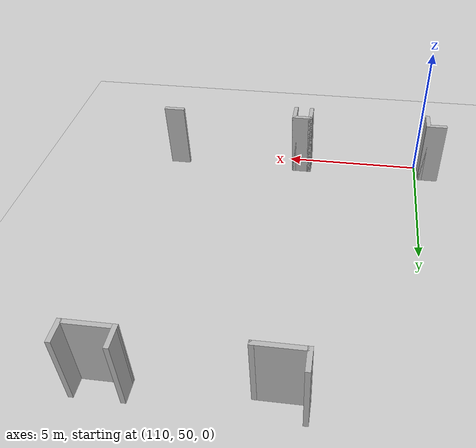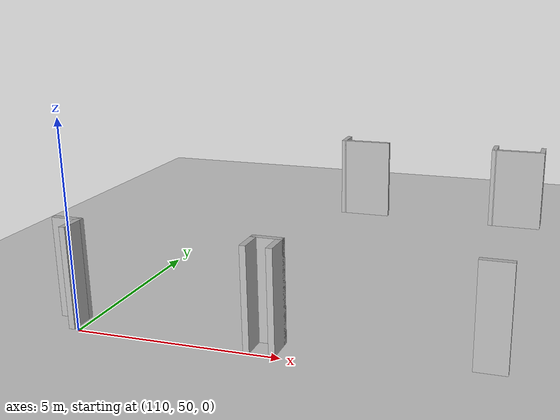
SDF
<sdf version="1.6">
 <world name="default">
  <model name="ground_plane">
   <static>1</static>
   <link name="link">
    <collision name="collision">
     <geometry><plane><normal>0 0 1</normal><size>200 100</size></plane></geometry>
     <surface><friction><ode><mu>100</mu><mu2>50</mu2></ode></friction></surface>
    </collision>
    <visual name="visual">
     <cast_shadows>0</cast_shadows>
     <geometry><plane><normal>0 0 1</normal><size>200 100</size></plane></geometry>
     <material>
      <script><uri>file://media/materials/scripts/gazebo.material</uri><name>Gazebo/Grey</name></script>
     </material>
    </visual>
   </link>
  </model>
  <model name="vgke_production">
   <link name="Wall_397">
    <pose>14.6406 13.8567 0 0 0 -1.5708</pose>
    <visual name="Wall_397_Visual">
     <pose>0 0 1.25 0 -0 0</pose>
     <geometry><box><size>0.75 0.15 2.5</size></box></geometry>
    </visual>
    <collision name="Wall_397_Collision">
     <pose>0 0 1.25 0 -0 0</pose>
     <geometry><box><size>0.75 0.15 2.5</size></box></geometry>
    </collision>
    <inertial>
     <inertia><ixx>1</ixx><ixy>0</ixy><ixz>0</ixz><iyy>1</iyy><iyz>0</iyz><izz>1</izz></inertia>
     <mass>1</mass>
    </inertial>
   </link>
   <link name="Wall_402">
    <pose>15.377 13.5572 0 0 -0 0.000724</pose>
    <visual name="Wall_402_Visual">
     <pose>0 0 1.25 0 -0 0</pose>
     <geometry><box><size>1.62281 0.15 2.5</size></box></geometry>
    </visual>
    <collision name="Wall_402_Collision">
     <pose>0 0 1.25 0 -0 0</pose>
     <geometry><box><size>1.62281 0.15 2.5</size></box></geometry>
    </collision>
    <inertial>
     <inertia><ixx>1</ixx><ixy>0</ixy><ixz>0</ixz><iyy>1</iyy><iyz>0</iyz><izz>1</izz></inertia>
     <mass>1</mass>
    </inertial>
   </link>
   <link name="Wall_403">
    <pose>16.1134 13.5578 0 0 -0 0</pose>
    <visual name="Wall_403_Visual">
     <pose>0 0 1.25 0 -0 0</pose>
     <geometry><box><size>0.15 0.15 2.5</size></box></geometry>
    </visual>
    <collision name="Wall_403_Collision">
     <pose>0 0 1.25 0 -0 0</pose>
     <geometry><box><size>0.15 0.15 2.5</size></box></geometry>
    </collision>
    <inertial>
     <inertia><ixx>1</ixx><ixy>0</ixy><ixz>0</ixz><iyy>1</iyy><iyz>0</iyz><izz>1</izz></inertia>
     <mass>1</mass>
    </inertial>
   </link>
   <link name="Wall_407">
    <pose>19.6285 13.7978 0 0 0 -1.5708</pose>
    <visual name="Wall_407_Visual">
     <pose>0 0 1.25 0 -0 0</pose>
     <geometry><box><size>0.75 0.15 2.5</size></box></geometry>
    </visual>
    <collision name="Wall_407_Collision">
     <pose>0 0 1.25 0 -0 0</pose>
     <geometry><box><size>0.75 0.15 2.5</size></box></geometry>
    </collision>
    <inertial>
     <inertia><ixx>1</ixx><ixy>0</ixy><ixz>0</ixz><iyy>1</iyy><iyz>0</iyz><izz>1</izz></inertia>
     <mass>1</mass>
    </inertial>
   </link>
   <link name="Wall_408">
    <pose>20.3747 13.4983 0 0 -0 0.000715</pose>
    <visual name="Wall_408_Visual">
     <pose>0 0 1.25 0 -0 0</pose>
     <geometry><box><size>1.64243 0.15 2.5</size></box></geometry>
    </visual>
    <collision name="Wall_408_Collision">
     <pose>0 0 1.25 0 -0 0</pose>
     <geometry><box><size>1.64243 0.15 2.5</size></box></geometry>
    </collision>
    <inertial>
     <inertia><ixx>1</ixx><ixy>0</ixy><ixz>0</ixz><iyy>1</iyy><iyz>0</iyz><izz>1</izz></inertia>
     <mass>1</mass>
    </inertial>
   </link>
   <link name="Wall_409">
    <pose>21.1209 13.7989 0 0 -0 1.5708</pose>
    <visual name="Wall_409_Visual">
     <pose>0 0 1.25 0 -0 0</pose>
     <geometry><box><size>0.75 0.15 2.5</size></box></geometry>
    </visual>
    <collision name="Wall_409_Collision">
     <pose>0 0 1.25 0 -0 0</pose>
     <geometry><box><size>0.75 0.15 2.5</size></box></geometry>
    </collision>
    <inertial>
     <inertia><ixx>1</ixx><ixy>0</ixy><ixz>0</ixz><iyy>1</iyy><iyz>0</iyz><izz>1</izz></inertia>
     <mass>1</mass>
    </inertial>
   </link>
   <link name="Wall_471">
    <pose>20.8346 3.23319 0 0 -0 0</pose>
    <visual name="Wall_471_Visual">
     <pose>0 0 1.25 0 -0 0</pose>
     <geometry><box><size>0.75 0.15 2.5</size></box></geometry>
    </visual>
    <collision name="Wall_471_Collision">
     <pose>0 0 1.25 0 -0 0</pose>
     <geometry><box><size>0.75 0.15 2.5</size></box></geometry>
    </collision>
    <inertial>
     <inertia><ixx>1</ixx><ixy>0</ixy><ixz>0</ixz><iyy>1</iyy><iyz>0</iyz><izz>1</izz></inertia>
     <mass>1</mass>
    </inertial>
   </link>
   <link name="Wall_477">
    <pose>15.8946 3.2554 0 0 -0 0</pose>
    <visual name="Wall_477_Visual">
     <pose>0 0 1.25 0 -0 0</pose>
     <geometry><box><size>0.75 0.15 2.5</size></box></geometry>
    </visual>
    <collision name="Wall_477_Collision">
     <pose>0 0 1.25 0 -0 0</pose>
     <geometry><box><size>0.75 0.15 2.5</size></box></geometry>
    </collision>
    <inertial>
     <inertia><ixx>1</ixx><ixy>0</ixy><ixz>0</ixz><iyy>1</iyy><iyz>0</iyz><izz>1</izz></inertia>
     <mass>1</mass>
    </inertial>
   </link>
   <link name="Wall_478">
    <pose>16.1946 2.9554 0 0 0 -1.5708</pose>
    <visual name="Wall_478_Visual">
     <pose>0 0 1.25 0 -0 0</pose>
     <geometry><box><size>0.75 0.15 2.5</size></box></geometry>
    </visual>
    <collision name="Wall_478_Collision">
     <pose>0 0 1.25 0 -0 0</pose>
     <geometry><box><size>0.75 0.15 2.5</size></box></geometry>
    </collision>
    <inertial>
     <inertia><ixx>1</ixx><ixy>0</ixy><ixz>0</ixz><iyy>1</iyy><iyz>0</iyz><izz>1</izz></inertia>
     <mass>1</mass>
    </inertial>
   </link>
   <link name="Wall_480">
    <pose>15.5946 2.9554 0 0 -0 1.5708</pose>
    <visual name="Wall_480_Visual">
     <pose>0 0 1.25 0 -0 0</pose>
     <geometry><box><size>0.75 0.15 2.5</size></box></geometry>
    </visual>
    <collision name="Wall_480_Collision">
     <pose>0 0 1.25 0 -0 0</pose>
     <geometry><box><size>0.75 0.15 2.5</size></box></geometry>
    </collision>
    <inertial>
     <inertia><ixx>1</ixx><ixy>0</ixy><ixz>0</ixz><iyy>1</iyy><iyz>0</iyz><izz>1</izz></inertia>
     <mass>1</mass>
    </inertial>
   </link>
   <link name="Wall_482">
    <pose>10.9102 3.2554 0 0 -0 0</pose>
    <visual name="Wall_482_Visual">
     <pose>0 0 1.25 0 -0 0</pose>
     <geometry><box><size>0.75 0.15 2.5</size></box></geometry>
    </visual>
    <collision name="Wall_482_Collision">
     <pose>0 0 1.25 0 -0 0</pose>
     <geometry><box><size>0.75 0.15 2.5</size></box></geometry>
    </collision>
    <inertial>
     <inertia><ixx>1</ixx><ixy>0</ixy><ixz>0</ixz><iyy>1</iyy><iyz>0</iyz><izz>1</izz></inertia>
     <mass>1</mass>
    </inertial>
   </link>
   <link name="Wall_483">
    <pose>11.2102 2.9554 0 0 0 -1.5708</pose>
    <visual name="Wall_483_Visual">
     <pose>0 0 1.25 0 -0 0</pose>
     <geometry><box><size>0.75 0.15 2.5</size></box></geometry>
    </visual>
    <collision name="Wall_483_Collision">
     <pose>0 0 1.25 0 -0 0</pose>
     <geometry><box><size>0.75 0.15 2.5</size></box></geometry>
    </collision>
    <inertial>
     <inertia><ixx>1</ixx><ixy>0</ixy><ixz>0</ixz><iyy>1</iyy><iyz>0</iyz><izz>1</izz></inertia>
     <mass>1</mass>
    </inertial>
   </link>
   <pose>98.6 47.426 0.01 0 0 0</pose>
  </model>
 </world>
</sdf>
